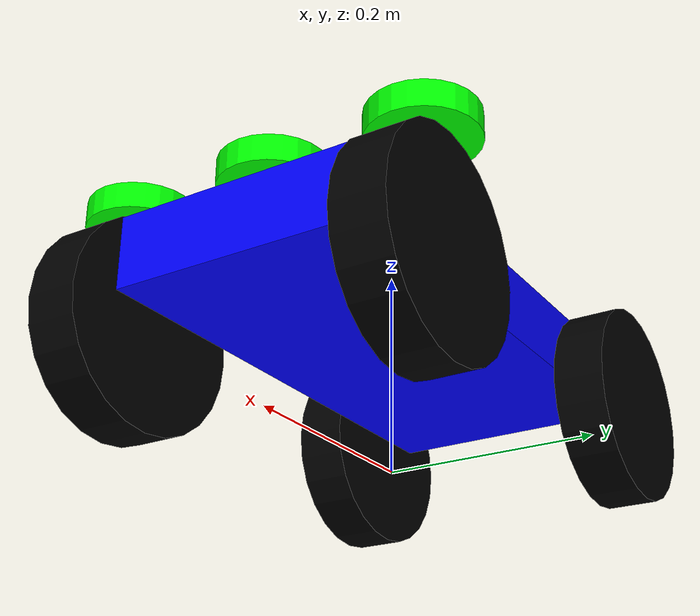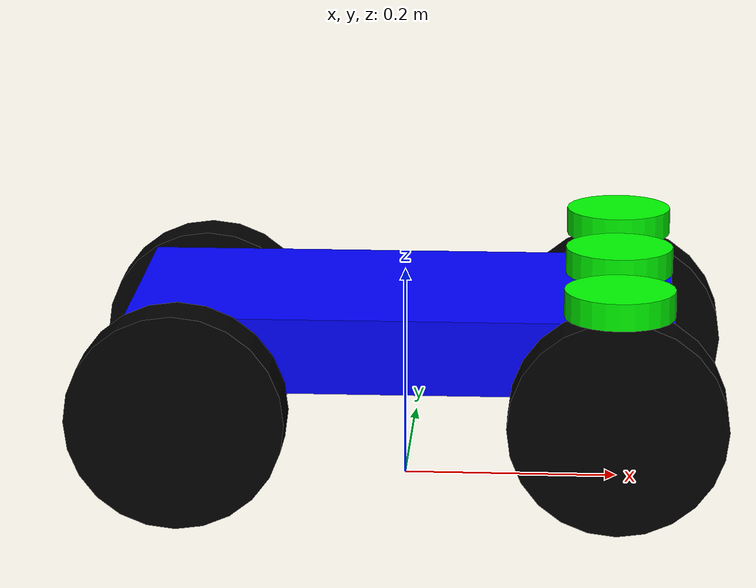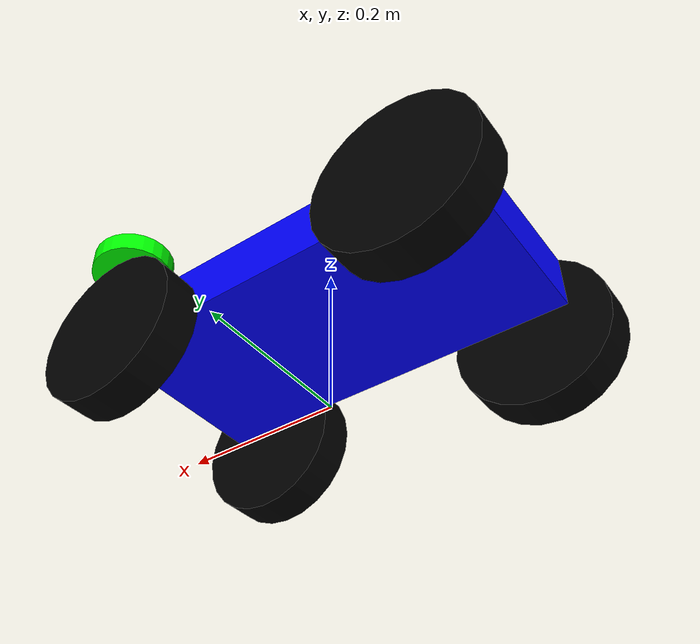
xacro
<?xml version="1.0"?>
<robot xmlns:xacro="http://www.ros.org/wiki/xacro">

    <!-- LINKS -->

    <!--Se incluyen los archivos xacro-->
    <xacro:include filename="base.xacro"/>
    <xacro:include filename="wheel.xacro"/>
    <xacro:include filename="steering.xacro"/>
    <xacro:include filename="params.xacro"/>
    <!--Se agrega la base del robot-->
    <xacro:base name="base_link" m="${base_mass}" w="${base_width}" l="${base_length}" h="${base_height}" zoff = "${zoff}"/>
    <!--Voltantes del robot-->
    <xacro:steering name="right_wheel_turn" m="${steering_mass}" rad="${steering_radius}" leng="${steering_length}"/>
    <xacro:steering name="left_wheel_turn"  m="${steering_mass}" rad="${steering_radius}" leng="${steering_length}"/>
    <xacro:steering name="steering_wheel"   m="${steering_mass}" rad="${steering_radius}" leng="${steering_length}"/>
    <!--Ruedas del robot-->
    <xacro:wheel name="left_wheel_rear"     m="${wheel_mass}" rad="${wheel_radius}" leng="${wheel_width}"/>
    <xacro:wheel name="right_wheel_rear"    m="${wheel_mass}" rad="${wheel_radius}" leng="${wheel_width}"/>
    <xacro:wheel name="left_wheel_front"    m="${wheel_mass}" rad="${wheel_radius}" leng="${wheel_width}"/>
    <xacro:wheel name="right_wheel_front"   m="${wheel_mass}" rad="${wheel_radius}" leng="${wheel_width}"/>

    <!-- JOINTS -->

    <!--Enlace entre sistema de giro con rueda derecha superior-->
    <joint name="front_right_steer_joint" type="revolute">
        <origin xyz="${(base_length/2.5)} ${-(base_width/2 + wheel_width/2)} ${wheel_radius*2 + steering_length/2}" rpy="0 0.0 0.0"/>
        <parent link="base_link"/>
        <child link="right_wheel_turn"/>
        <axis xyz="0.0 0.0 1.0"/>
        <limit lower="${lower_limit}" upper="${upper_limit}" effort="100" velocity="0.5"/>
    </joint>
    <!--Enlace entre sistema de giro con rueda izquierda superior-->
    <joint name="front_left_steer_joint" type="revolute">
        <origin xyz="${(base_length/2.5)} ${(base_width/2 + wheel_width/2)} ${wheel_radius*2 + steering_length/2}" rpy="0 0.0 0.0"/>
        <parent link="base_link"/>
        <child link="left_wheel_turn"/>
        <axis xyz="0.0 0.0 1.0"/>
        <limit lower="${lower_limit}" upper="${upper_limit}" effort="100" velocity="0.5"/>
    </joint>
    <!--Enlace para el volante de dirección-->
    <joint name="steering_joint" type="continuous">
        <origin xyz="${(base_length/2.5)} 0.0 ${wheel_radius*2 + steering_length/2}" rpy="0.0 0.0 0.0"/>
        <parent link="base_link"/>
        <child link="steering_wheel"/>
        <axis xyz="0 0 1"/>
    </joint>
    <!--Enlace entre rueda izquierda frontal y sistema de giro-->
    <joint name="front_right_wheel_joint" type="continuous">
        <parent link="right_wheel_turn"/>
        <child link="right_wheel_front"/>
        <origin xyz="0.0 0.0 ${-wheel_radius- steering_length/2}" rpy="0 0.0 0.0"/>
        <axis xyz="0.0 1 0.0"/>
    </joint>
    <!--Enlace entre rueda derecha frontal y sistema de giro-->
    <joint name="front_left_wheel_joint" type="continuous">
        <parent link="left_wheel_turn"/>
        <child link="left_wheel_front"/>
        <origin xyz="0.0 0.0 ${-wheel_radius - steering_length/2}" rpy="0 0.0 0.0"/>
        <axis xyz="0.0 1 0.0"/>
    </joint>
    <!--Enlace entre rueda izquierda inferior y base-->
    <joint name="rear_left_wheel_joint" type="continuous">
        <parent link="base_link"/>
        <child link="left_wheel_rear"/>
        <origin xyz="${-(base_length/2.5)} ${(base_width/2 + wheel_width/2)} ${wheel_radius}" rpy="0 0.0 0.0"/>
        <axis xyz="0.0 1.0 0.0"/>
    </joint>
    <!--Enlace entre rueda izquierda inferior y base-->
    <joint name="rear_right_wheel_joint" type="continuous">
        <parent link="base_link"/>
        <child link="right_wheel_rear"/>
        <origin xyz="${-(base_length/2.5)} ${-(base_width/2 + wheel_width/2)} ${wheel_radius}" rpy="0 0.0 0.0"/>
        <axis xyz="0.0 1.0 0.0"/>
    </joint>

    <!-- PLUGIN GAZENO ACKERMAN ROBOT -->

    <gazebo>
        <plugin name="gazebo_ros_ackermann_drive" filename="libgazebo_ros_ackermann_drive.so">

            <update_rate>400.0</update_rate>

            <!-- wheels -->
            <front_left_joint>front_left_wheel_joint</front_left_joint>
            <front_right_joint>front_right_wheel_joint</front_right_joint>
            <rear_left_joint>rear_left_wheel_joint</rear_left_joint>
            <rear_right_joint>rear_right_wheel_joint</rear_right_joint>
            <left_steering_joint>front_left_steer_joint</left_steering_joint>
            <right_steering_joint>front_right_steer_joint</right_steering_joint>
            <steering_wheel_joint>steering_joint</steering_wheel_joint>

            <!-- Max absolute steer angle for tyre in radians-->
            <!-- Any cmd_vel angular z greater than this would be capped -->
            <max_steer>0.6458</max_steer>

            <!-- Max absolute steering angle of steering wheel -->
            <max_steering_angle>7.85</max_steering_angle>

            <!-- Max absolute linear speed in m/s -->
            <max_speed>20</max_speed>

            <!-- PID tuning -->
            <left_steering_pid_gain>100 0.01 0.1</left_steering_pid_gain>
            <right_steering_pid_gain>100 0.01 0.1</right_steering_pid_gain>
            <linear_velocity_pid_gain>50 0.01 0.1</linear_velocity_pid_gain>

            <left_steering_i_range>-0.05 0.05</left_steering_i_range>
            <right_steering_i_range>-0.05 0.05</right_steering_i_range>
            <linear_velocity_i_range>-0.05 0.05</linear_velocity_i_range>

            <!-- output -->
            <publish_odom>true</publish_odom>
            <publish_odom_tf>true</publish_odom_tf>
            <publish_wheel_tf>true</publish_wheel_tf>
            <publish_distance>true</publish_distance>

            <odometry_frame>odom_demo</odometry_frame>
            <robot_base_frame>base_link</robot_base_frame>

        </plugin>
    </gazebo>
</robot>

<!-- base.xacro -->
<robot xmlns:xacro="http://www.ros.org/wiki/xacro">
    <!--Macro para la base-->
    <xacro:macro name="base" params="name m w l h zoff">
    <link name="${name}">
        <visual>
            <origin xyz="0.0 0.0 ${zoff}" rpy="0.0 0.0 0.0"/>
            <geometry>
                <box size="${l} ${w} ${h}"/>
            </geometry>
            <material name="Blue">
                <color rgba="0.0 0.0 1.0 1.0"/>
            </material>
        </visual>
        <collision>
            <origin xyz="0.0 0.0 ${zoff}" rpy="0.0 0.0 0.0"/>
            <geometry>
                <box size="${l} ${w} ${h}"/>
            </geometry>
        </collision>
        <inertial>
            <origin xyz="0 0 0" rpy="${pi/2} 0 ${pi/2}"/>
            <mass value="${m}"/>
            <inertia ixx="${(m/12) * (h*h + l*l)}" ixy="0.0" ixz="0.0" iyy="${(m/12) * (w*w + l*l)}" iyz="0.0" izz="${(m/12) * (w*w + h*h)}"/>
        </inertial>
    </link>
    <gazebo reference="${name}">
        <material>Gazebo/Blue</material>
    </gazebo>
    </xacro:macro>
</robot>

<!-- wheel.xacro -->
<robot xmlns:xacro="http://www.ros.org/wiki/xacro">
    <!--Macro para las ruedas-->
    <xacro:macro name="wheel" params="name m rad leng">
    <link name="${name}">
        <visual>
            <origin xyz="0.0 0.0 0.0" rpy="1.57 0.0 0.0"/>
            <geometry>
                <cylinder radius="${rad}" length="${leng}"/>
            </geometry>
            <material name="Black">
                <color rgba="0.0 0.0 0.0 1.0"/>
            </material>
        </visual>
        <collision>
            <origin xyz="0.0 0.0 0.0" rpy="1.57 0.0 0.0"/>
            <geometry>
                <sphere radius="${rad}"/>
            </geometry>
        </collision>
        <inertial>
            <origin xyz="0 0 0" rpy="${pi/2} 0 0" />
            <mass value="${m}"/>
            <inertia ixx="${(m/12) * (3*rad*rad + leng*leng)}" ixy = "0" ixz = "0" iyy="${(m/12) * (3*rad*rad + leng*leng)}" iyz = "0" izz="${(m/2) * (rad*rad)}"/>
        </inertial>
    </link>
    <gazebo reference="${name}">
        <material>Gazebo/Black</material>
    </gazebo>
    </xacro:macro>
</robot>

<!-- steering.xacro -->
<robot xmlns:xacro="http://www.ros.org/wiki/xacro">
    <!--Macro para los volante-->
    <xacro:macro name="steering" params="name m rad leng">
    <link name="${name}">
        <visual>
            <origin xyz="0.0 0.0 0.0" rpy="0.0 0.0 0.0"/>
            <geometry>
                <cylinder radius="${rad}" length="${leng}"/>
            </geometry>
            <material name="Green">
                <color rgba="0.0 1.0 0.0 1.0"/>
            </material>
        </visual>
        <collision>
            <origin xyz="0.0 0.0 0.0" rpy="0.0 0.0 0.0"/>
            <geometry>
                <cylinder radius="${rad}" length="${leng}"/>
            </geometry>
        </collision>
        <inertial>
            <origin xyz="0 0 0" rpy="${pi/2} 0 0" />
            <mass value="${m}"/>
            <inertia ixx="${(m/12) * (3*rad*rad + leng*leng)}" ixy = "0" ixz = "0" iyy="${(m/12) * (3*rad*rad + leng*leng)}" iyz = "0" izz="${(m/2) * (rad*rad)}"/>
        </inertial>
    </link>
    <gazebo reference="${name}">
        <material>Gazebo/Green</material>
    </gazebo>
    </xacro:macro>
</robot>

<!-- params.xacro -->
<robot xmlns:xacro="http://ros.org/wiki/xacro">
    <!-- Propiedades de la base -->
    <xacro:property name="base_mass"    value = "1500"/>
    <xacro:property name="base_width"   value = "0.25"/>
    <xacro:property name="base_length"  value = "0.5"/>
    <xacro:property name="base_height"  value = "0.07"/>
    <xacro:property name="zoff"         value = "0.15"/>
    <!-- Propiedades de las ruedas -->
    <xacro:property name="wheel_mass"   value = "11"/>
    <xacro:property name="wheel_radius" value = "0.1"/>
    <xacro:property name="wheel_width"  value = "0.05"/>
    <!-- Propiedades de las direcciones -->
    <xacro:property name="steering_mass"    value = "1"/>
    <xacro:property name="steering_radius"  value = "0.05"/>
    <xacro:property name="steering_length"  value = "0.025"/>
    <!-- Limites superior e inferior ruedas -->
    <xacro:property name="lower_limit" value = "-0.6458"/>
    <xacro:property name="upper_limit" value = "0.6458"/>
    <!-- Inercias de los objetos  -->
    <xacro:macro name="box_inertia" params="m w h l">
        <inertial>
        <origin xyz="0 0 0" rpy="${pi/2} 0 ${pi/2}"/>
        <mass value="${m}"/>
        <inertia ixx="${(m/12) * (h*h + l*l)}" ixy="0.0" ixz="0.0" iyy="${(m/12) * (w*w + l*l)}" iyz="0.0" izz="${(m/12) * (w*w + h*h)}"/>
        </inertial>
    </xacro:macro>

    <xacro:macro name="cylinder_inertia" params="m r h">
        <inertial>
        <origin xyz="0 0 0" rpy="${pi/2} 0 0" />
        <mass value="${m}"/>
        <inertia ixx="${(m/12) * (3*r*r + h*h)}" ixy = "0" ixz = "0" iyy="${(m/12) * (3*r*r + h*h)}" iyz = "0" izz="${(m/2) * (r*r)}"/>
        </inertial>
    </xacro:macro>
</robot>
